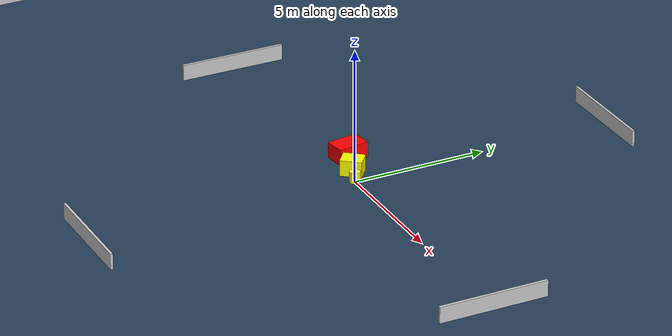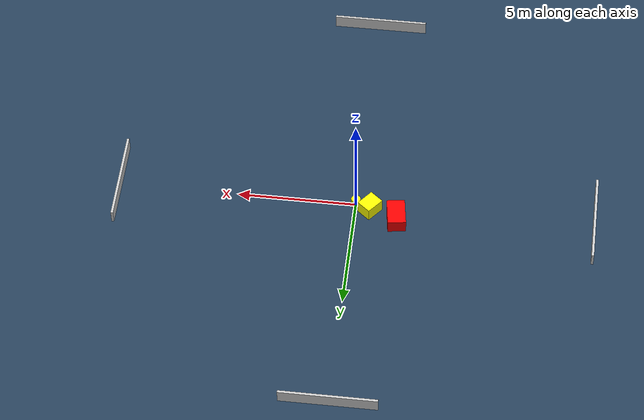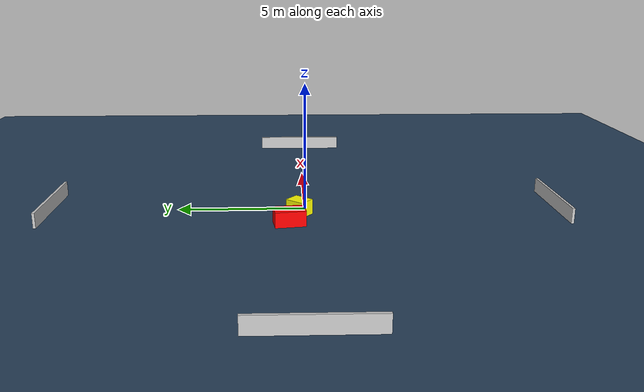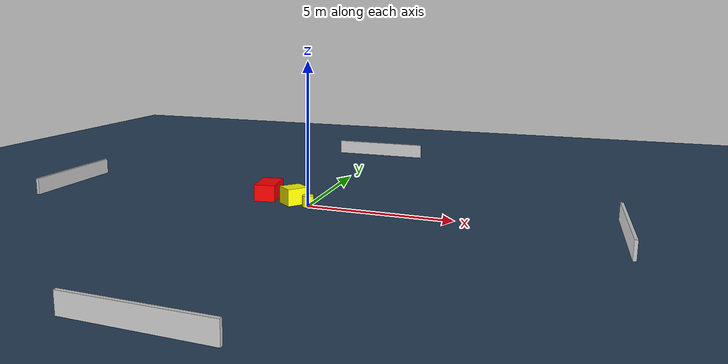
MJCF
<?xml version="1.0" ?>
<mujoco model="generated_environment">
  <option timestep="0.01" integrator="RK4" cone="elliptic"/>
  <default>
    <geom density="1"/>
  </default>
  <asset>
    <texture builtin="gradient" height="3072" name="skybox" rgb1="0.3 0.5 0.7" rgb2="0 0 0" type="skybox" width="512"/>
    <texture builtin="checker" height="300" name="groundplane" rgb1="0.2 0.3 0.4" rgb2="0.1 0.2 0.3" type="2d" width="300"/>
    <material name="groundplane" reflectance="0.2" texrepeat="5 5" texture="groundplane"/>
  </asset>
  <worldbody>
    <light dir="0 0 -1" directional="true" pos="0 0 1.5"/>
    <geom condim="3" friction="0.5 0.005 0.001" material="groundplane" name="floor" pos="0 0 0" size="0 0 0.05" type="plane"/>
    <body name="walls">
      <geom name="wall_1" condim="4" pos="-10.0 0.0 0.3" rgba="0.800000011920929 0.800000011920929 0.800000011920929 1.0" size="0.05 2.0 0.3" type="box"/>
      <geom name="wall_2" condim="4" pos="10.0 0.0 0.3" rgba="0.800000011920929 0.800000011920929 0.800000011920929 1.0" size="0.05 2.0 0.3" type="box"/>
      <geom name="wall_3" condim="4" pos="0.0 -10.0 0.3" rgba="0.800000011920929 0.800000011920929 0.800000011920929 1.0" size="2.0 0.05 0.3" type="box"/>
      <geom name="wall_4" condim="4" pos="0.0 10.0 0.3" rgba="0.800000011920929 0.800000011920929 0.800000011920929 1.0" size="2.0 0.05 0.3" type="box"/>
    </body>
    <body name="robot">
      <joint name="joint_x" type="slide" pos="0 0 0" axis="1 0 0"/>
      <joint name="joint_y" type="slide" pos="0 0 0" axis="0 1 0"/>
      <geom name="robot" type="cylinder" pos="0.0 0.0 0.2" size="0.2 0.2 0.0" mass="5.0" friction="1.0 0.005 0.0001" condim="4" rgba="1.0 1.0 0.0 1.0"/>
    </body>
    <body name="obstacle_1_movable">
      <geom name="obstacle_1_movable" condim="4" pos="-0.6186809085337208 0.22943012031747084 0.3" euler="0 0 230.69453212274703" friction="0.0 0.005 0.001" rgba="1.0 1.0 0.0 1.0" size="0.39755482857676805 0.32448698798555703 0.3" type="box" mass="0.1"/>
      <joint type="free"/>
    </body>
    <body name="obstacle_2_static">
      <geom name="obstacle_2_static" condim="4" pos="-1.7547466477899978 0.6183299393661452 0.3" euler="0 0 188.24888675596347" friction="0.0 0.005 0.001" rgba="1.0 0.0 0.0 1.0" size="0.38013695714094053 0.5870631892421145 0.3" type="box"/>
    </body>
  </worldbody>
  <actuator>
    <motor name="actuator_x" joint="joint_x" gear="1" ctrlrange="-1 1"/>
    <motor name="actuator_y" joint="joint_y" gear="1" ctrlrange="-1 1"/>
  </actuator>
</mujoco>
